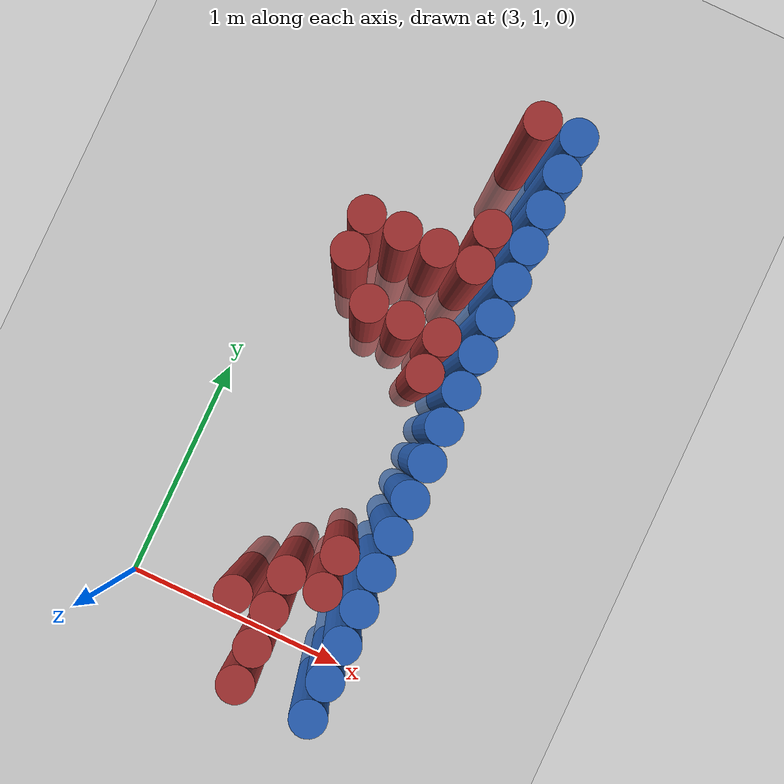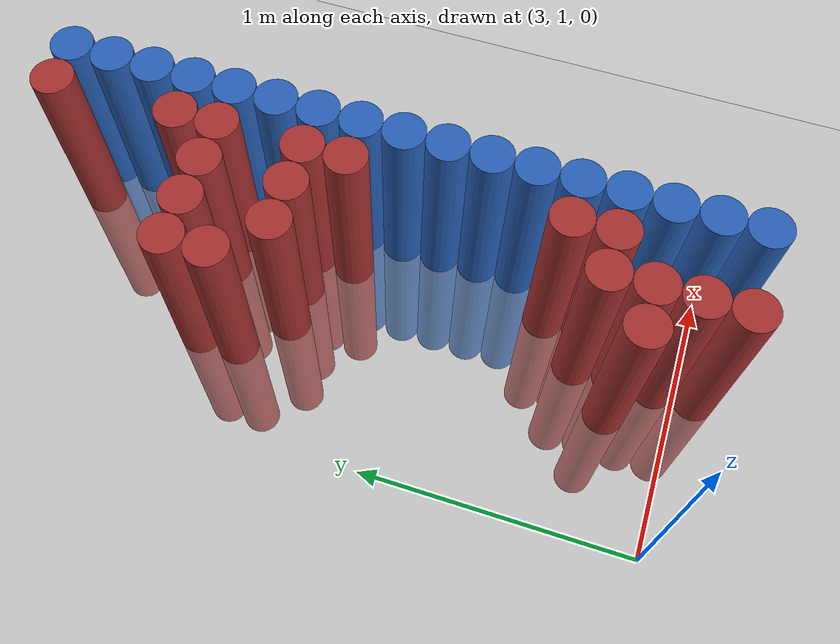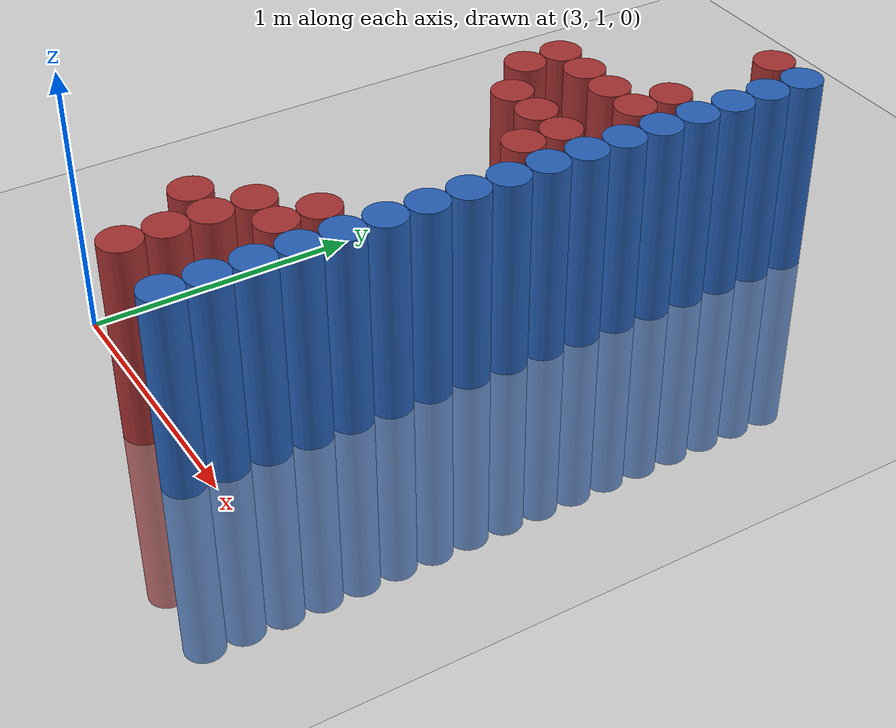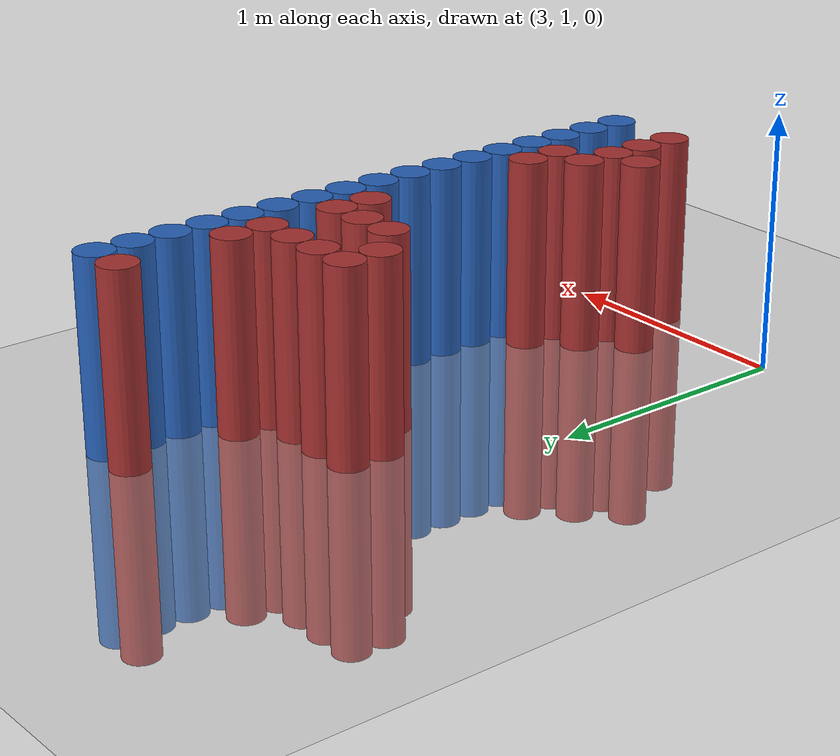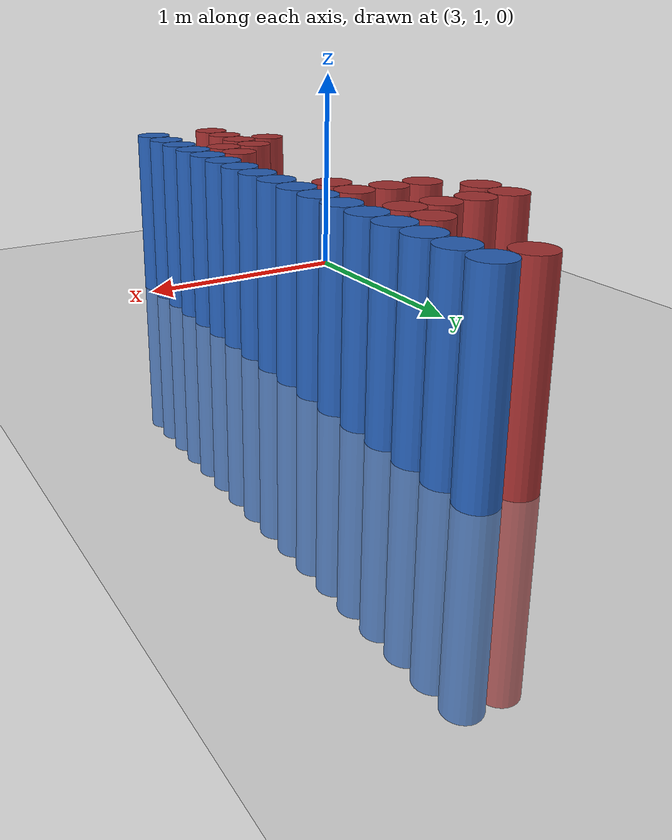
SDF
<sdf version="1.6">
 <world name="default">
  <model name="ground_plane">
   <static>1</static>
   <link name="link">
    <collision name="collision">
     <geometry><plane><normal>0 0 1</normal><size>100 100</size></plane></geometry>
     <surface><friction><ode><mu>100</mu><mu2>50</mu2></ode></friction></surface>
    </collision>
    <visual name="visual">
     <cast_shadows>0</cast_shadows>
     <geometry><plane><normal>0 0 1</normal><size>100 100</size></plane></geometry>
     <material>
      <script><uri>file://media/materials/scripts/gazebo.material</uri><name>Gazebo/Grey</name></script>
     </material>
    </visual>
   </link>
  </model>
  <model name="unit_cylinder_128">
   <static>1</static>
   <pose>3.925000 1.075000 0.000000 0.000000 0.000000 0.000000</pose>
   <link name="link">
    <inertial>
     <mass>1</mass>
     <inertia><ixx>0.145833</ixx><ixy>0</ixy><ixz>0</ixz><iyy>0.145833</iyy><iyz>0</iyz><izz>0.125</izz></inertia>
    </inertial>
    <collision name="collision">
     <geometry><cylinder><radius>0.075000</radius><length>1.5</length></cylinder></geometry>
    </collision>
    <visual name="visual">
     <geometry><cylinder><radius>0.075000</radius><length>1.5</length></cylinder></geometry>
     <material>
      <ambient>0.152000 0.379000 0.720000 1</ambient>
      <diffuse>0.152000 0.379000 0.720000 1</diffuse>
     </material>
     <material>
      <script><name>Gazebo/Grey</name><uri>file://media/materials/scripts/gazebo.material</uri></script>
     </material>
    </visual>
   </link>
  </model>
  <model name="unit_cylinder_130">
   <static>1</static>
   <pose>3.925000 1.225000 0.000000 0.000000 0.000000 0.000000</pose>
   <link name="link">
    <inertial>
     <mass>1</mass>
     <inertia><ixx>0.145833</ixx><ixy>0</ixy><ixz>0</ixz><iyy>0.145833</iyy><iyz>0</iyz><izz>0.125</izz></inertia>
    </inertial>
    <collision name="collision">
     <geometry><cylinder><radius>0.075000</radius><length>1.5</length></cylinder></geometry>
    </collision>
    <visual name="visual">
     <geometry><cylinder><radius>0.075000</radius><length>1.5</length></cylinder></geometry>
     <material>
      <ambient>0.152000 0.379000 0.720000 1</ambient>
      <diffuse>0.152000 0.379000 0.720000 1</diffuse>
     </material>
     <material>
      <script><name>Gazebo/Grey</name><uri>file://media/materials/scripts/gazebo.material</uri></script>
     </material>
    </visual>
   </link>
  </model>
  <model name="unit_cylinder_132">
   <static>1</static>
   <pose>3.925000 1.375000 0.000000 0.000000 0.000000 0.000000</pose>
   <link name="link">
    <inertial>
     <mass>1</mass>
     <inertia><ixx>0.145833</ixx><ixy>0</ixy><ixz>0</ixz><iyy>0.145833</iyy><iyz>0</iyz><izz>0.125</izz></inertia>
    </inertial>
    <collision name="collision">
     <geometry><cylinder><radius>0.075000</radius><length>1.5</length></cylinder></geometry>
    </collision>
    <visual name="visual">
     <geometry><cylinder><radius>0.075000</radius><length>1.5</length></cylinder></geometry>
     <material>
      <ambient>0.152000 0.379000 0.720000 1</ambient>
      <diffuse>0.152000 0.379000 0.720000 1</diffuse>
     </material>
     <material>
      <script><name>Gazebo/Grey</name><uri>file://media/materials/scripts/gazebo.material</uri></script>
     </material>
    </visual>
   </link>
  </model>
  <model name="unit_cylinder_134">
   <static>1</static>
   <pose>3.925000 1.525000 0.000000 0.000000 0.000000 0.000000</pose>
   <link name="link">
    <inertial>
     <mass>1</mass>
     <inertia><ixx>0.145833</ixx><ixy>0</ixy><ixz>0</ixz><iyy>0.145833</iyy><iyz>0</iyz><izz>0.125</izz></inertia>
    </inertial>
    <collision name="collision">
     <geometry><cylinder><radius>0.075000</radius><length>1.5</length></cylinder></geometry>
    </collision>
    <visual name="visual">
     <geometry><cylinder><radius>0.075000</radius><length>1.5</length></cylinder></geometry>
     <material>
      <ambient>0.152000 0.379000 0.720000 1</ambient>
      <diffuse>0.152000 0.379000 0.720000 1</diffuse>
     </material>
     <material>
      <script><name>Gazebo/Grey</name><uri>file://media/materials/scripts/gazebo.material</uri></script>
     </material>
    </visual>
   </link>
  </model>
  <model name="unit_cylinder_136">
   <static>1</static>
   <pose>3.925000 1.675000 0.000000 0.000000 0.000000 0.000000</pose>
   <link name="link">
    <inertial>
     <mass>1</mass>
     <inertia><ixx>0.145833</ixx><ixy>0</ixy><ixz>0</ixz><iyy>0.145833</iyy><iyz>0</iyz><izz>0.125</izz></inertia>
    </inertial>
    <collision name="collision">
     <geometry><cylinder><radius>0.075000</radius><length>1.5</length></cylinder></geometry>
    </collision>
    <visual name="visual">
     <geometry><cylinder><radius>0.075000</radius><length>1.5</length></cylinder></geometry>
     <material>
      <ambient>0.152000 0.379000 0.720000 1</ambient>
      <diffuse>0.152000 0.379000 0.720000 1</diffuse>
     </material>
     <material>
      <script><name>Gazebo/Grey</name><uri>file://media/materials/scripts/gazebo.material</uri></script>
     </material>
    </visual>
   </link>
  </model>
  <model name="unit_cylinder_138">
   <static>1</static>
   <pose>3.925000 1.825000 0.000000 0.000000 0.000000 0.000000</pose>
   <link name="link">
    <inertial>
     <mass>1</mass>
     <inertia><ixx>0.145833</ixx><ixy>0</ixy><ixz>0</ixz><iyy>0.145833</iyy><iyz>0</iyz><izz>0.125</izz></inertia>
    </inertial>
    <collision name="collision">
     <geometry><cylinder><radius>0.075000</radius><length>1.5</length></cylinder></geometry>
    </collision>
    <visual name="visual">
     <geometry><cylinder><radius>0.075000</radius><length>1.5</length></cylinder></geometry>
     <material>
      <ambient>0.152000 0.379000 0.720000 1</ambient>
      <diffuse>0.152000 0.379000 0.720000 1</diffuse>
     </material>
     <material>
      <script><name>Gazebo/Grey</name><uri>file://media/materials/scripts/gazebo.material</uri></script>
     </material>
    </visual>
   </link>
  </model>
  <model name="unit_cylinder_140">
   <static>1</static>
   <pose>3.925000 1.975000 0.000000 0.000000 0.000000 0.000000</pose>
   <link name="link">
    <inertial>
     <mass>1</mass>
     <inertia><ixx>0.145833</ixx><ixy>0</ixy><ixz>0</ixz><iyy>0.145833</iyy><iyz>0</iyz><izz>0.125</izz></inertia>
    </inertial>
    <collision name="collision">
     <geometry><cylinder><radius>0.075000</radius><length>1.5</length></cylinder></geometry>
    </collision>
    <visual name="visual">
     <geometry><cylinder><radius>0.075000</radius><length>1.5</length></cylinder></geometry>
     <material>
      <ambient>0.152000 0.379000 0.720000 1</ambient>
      <diffuse>0.152000 0.379000 0.720000 1</diffuse>
     </material>
     <material>
      <script><name>Gazebo/Grey</name><uri>file://media/materials/scripts/gazebo.material</uri></script>
     </material>
    </visual>
   </link>
  </model>
  <model name="unit_cylinder_142">
   <static>1</static>
   <pose>3.925000 2.125000 0.000000 0.000000 0.000000 0.000000</pose>
   <link name="link">
    <inertial>
     <mass>1</mass>
     <inertia><ixx>0.145833</ixx><ixy>0</ixy><ixz>0</ixz><iyy>0.145833</iyy><iyz>0</iyz><izz>0.125</izz></inertia>
    </inertial>
    <collision name="collision">
     <geometry><cylinder><radius>0.075000</radius><length>1.5</length></cylinder></geometry>
    </collision>
    <visual name="visual">
     <geometry><cylinder><radius>0.075000</radius><length>1.5</length></cylinder></geometry>
     <material>
      <ambient>0.152000 0.379000 0.720000 1</ambient>
      <diffuse>0.152000 0.379000 0.720000 1</diffuse>
     </material>
     <material>
      <script><name>Gazebo/Grey</name><uri>file://media/materials/scripts/gazebo.material</uri></script>
     </material>
    </visual>
   </link>
  </model>
  <model name="unit_cylinder_144">
   <static>1</static>
   <pose>3.925000 2.275000 0.000000 0.000000 0.000000 0.000000</pose>
   <link name="link">
    <inertial>
     <mass>1</mass>
     <inertia><ixx>0.145833</ixx><ixy>0</ixy><ixz>0</ixz><iyy>0.145833</iyy><iyz>0</iyz><izz>0.125</izz></inertia>
    </inertial>
    <collision name="collision">
     <geometry><cylinder><radius>0.075000</radius><length>1.5</length></cylinder></geometry>
    </collision>
    <visual name="visual">
     <geometry><cylinder><radius>0.075000</radius><length>1.5</length></cylinder></geometry>
     <material>
      <ambient>0.152000 0.379000 0.720000 1</ambient>
      <diffuse>0.152000 0.379000 0.720000 1</diffuse>
     </material>
     <material>
      <script><name>Gazebo/Grey</name><uri>file://media/materials/scripts/gazebo.material</uri></script>
     </material>
    </visual>
   </link>
  </model>
  <model name="unit_cylinder_146">
   <static>1</static>
   <pose>3.925000 2.425000 0.000000 0.000000 0.000000 0.000000</pose>
   <link name="link">
    <inertial>
     <mass>1</mass>
     <inertia><ixx>0.145833</ixx><ixy>0</ixy><ixz>0</ixz><iyy>0.145833</iyy><iyz>0</iyz><izz>0.125</izz></inertia>
    </inertial>
    <collision name="collision">
     <geometry><cylinder><radius>0.075000</radius><length>1.5</length></cylinder></geometry>
    </collision>
    <visual name="visual">
     <geometry><cylinder><radius>0.075000</radius><length>1.5</length></cylinder></geometry>
     <material>
      <ambient>0.152000 0.379000 0.720000 1</ambient>
      <diffuse>0.152000 0.379000 0.720000 1</diffuse>
     </material>
     <material>
      <script><name>Gazebo/Grey</name><uri>file://media/materials/scripts/gazebo.material</uri></script>
     </material>
    </visual>
   </link>
  </model>
  <model name="unit_cylinder_148">
   <static>1</static>
   <pose>3.925000 2.575000 0.000000 0.000000 0.000000 0.000000</pose>
   <link name="link">
    <inertial>
     <mass>1</mass>
     <inertia><ixx>0.145833</ixx><ixy>0</ixy><ixz>0</ixz><iyy>0.145833</iyy><iyz>0</iyz><izz>0.125</izz></inertia>
    </inertial>
    <collision name="collision">
     <geometry><cylinder><radius>0.075000</radius><length>1.5</length></cylinder></geometry>
    </collision>
    <visual name="visual">
     <geometry><cylinder><radius>0.075000</radius><length>1.5</length></cylinder></geometry>
     <material>
      <ambient>0.152000 0.379000 0.720000 1</ambient>
      <diffuse>0.152000 0.379000 0.720000 1</diffuse>
     </material>
     <material>
      <script><name>Gazebo/Grey</name><uri>file://media/materials/scripts/gazebo.material</uri></script>
     </material>
    </visual>
   </link>
  </model>
  <model name="unit_cylinder_150">
   <static>1</static>
   <pose>3.925000 2.725000 0.000000 0.000000 0.000000 0.000000</pose>
   <link name="link">
    <inertial>
     <mass>1</mass>
     <inertia><ixx>0.145833</ixx><ixy>0</ixy><ixz>0</ixz><iyy>0.145833</iyy><iyz>0</iyz><izz>0.125</izz></inertia>
    </inertial>
    <collision name="collision">
     <geometry><cylinder><radius>0.075000</radius><length>1.5</length></cylinder></geometry>
    </collision>
    <visual name="visual">
     <geometry><cylinder><radius>0.075000</radius><length>1.5</length></cylinder></geometry>
     <material>
      <ambient>0.152000 0.379000 0.720000 1</ambient>
      <diffuse>0.152000 0.379000 0.720000 1</diffuse>
     </material>
     <material>
      <script><name>Gazebo/Grey</name><uri>file://media/materials/scripts/gazebo.material</uri></script>
     </material>
    </visual>
   </link>
  </model>
  <model name="unit_cylinder_152">
   <static>1</static>
   <pose>3.925000 2.875000 0.000000 0.000000 0.000000 0.000000</pose>
   <link name="link">
    <inertial>
     <mass>1</mass>
     <inertia><ixx>0.145833</ixx><ixy>0</ixy><ixz>0</ixz><iyy>0.145833</iyy><iyz>0</iyz><izz>0.125</izz></inertia>
    </inertial>
    <collision name="collision">
     <geometry><cylinder><radius>0.075000</radius><length>1.5</length></cylinder></geometry>
    </collision>
    <visual name="visual">
     <geometry><cylinder><radius>0.075000</radius><length>1.5</length></cylinder></geometry>
     <material>
      <ambient>0.152000 0.379000 0.720000 1</ambient>
      <diffuse>0.152000 0.379000 0.720000 1</diffuse>
     </material>
     <material>
      <script><name>Gazebo/Grey</name><uri>file://media/materials/scripts/gazebo.material</uri></script>
     </material>
    </visual>
   </link>
  </model>
  <model name="unit_cylinder_154">
   <static>1</static>
   <pose>3.925000 3.025000 0.000000 0.000000 0.000000 0.000000</pose>
   <link name="link">
    <inertial>
     <mass>1</mass>
     <inertia><ixx>0.145833</ixx><ixy>0</ixy><ixz>0</ixz><iyy>0.145833</iyy><iyz>0</iyz><izz>0.125</izz></inertia>
    </inertial>
    <collision name="collision">
     <geometry><cylinder><radius>0.075000</radius><length>1.5</length></cylinder></geometry>
    </collision>
    <visual name="visual">
     <geometry><cylinder><radius>0.075000</radius><length>1.5</length></cylinder></geometry>
     <material>
      <ambient>0.152000 0.379000 0.720000 1</ambient>
      <diffuse>0.152000 0.379000 0.720000 1</diffuse>
     </material>
     <material>
      <script><name>Gazebo/Grey</name><uri>file://media/materials/scripts/gazebo.material</uri></script>
     </material>
    </visual>
   </link>
  </model>
  <model name="unit_cylinder_156">
   <static>1</static>
   <pose>3.925000 3.175000 0.000000 0.000000 0.000000 0.000000</pose>
   <link name="link">
    <inertial>
     <mass>1</mass>
     <inertia><ixx>0.145833</ixx><ixy>0</ixy><ixz>0</ixz><iyy>0.145833</iyy><iyz>0</iyz><izz>0.125</izz></inertia>
    </inertial>
    <collision name="collision">
     <geometry><cylinder><radius>0.075000</radius><length>1.5</length></cylinder></geometry>
    </collision>
    <visual name="visual">
     <geometry><cylinder><radius>0.075000</radius><length>1.5</length></cylinder></geometry>
     <material>
      <ambient>0.152000 0.379000 0.720000 1</ambient>
      <diffuse>0.152000 0.379000 0.720000 1</diffuse>
     </material>
     <material>
      <script><name>Gazebo/Grey</name><uri>file://media/materials/scripts/gazebo.material</uri></script>
     </material>
    </visual>
   </link>
  </model>
  <model name="unit_cylinder_158">
   <static>1</static>
   <pose>3.925000 3.325000 0.000000 0.000000 0.000000 0.000000</pose>
   <link name="link">
    <inertial>
     <mass>1</mass>
     <inertia><ixx>0.145833</ixx><ixy>0</ixy><ixz>0</ixz><iyy>0.145833</iyy><iyz>0</iyz><izz>0.125</izz></inertia>
    </inertial>
    <collision name="collision">
     <geometry><cylinder><radius>0.075000</radius><length>1.5</length></cylinder></geometry>
    </collision>
    <visual name="visual">
     <geometry><cylinder><radius>0.075000</radius><length>1.5</length></cylinder></geometry>
     <material>
      <ambient>0.152000 0.379000 0.720000 1</ambient>
      <diffuse>0.152000 0.379000 0.720000 1</diffuse>
     </material>
     <material>
      <script><name>Gazebo/Grey</name><uri>file://media/materials/scripts/gazebo.material</uri></script>
     </material>
    </visual>
   </link>
  </model>
  <model name="unit_cylinder_556">
   <static>1</static>
   <pose>3.325000 2.575000 0.000000 0.000000 0.000000 0.000000</pose>
   <link name="link">
    <inertial>
     <mass>1</mass>
     <inertia><ixx>0.145833</ixx><ixy>0</ixy><ixz>0</ixz><iyy>0.145833</iyy><iyz>0</iyz><izz>0.125</izz></inertia>
    </inertial>
    <collision name="collision">
     <geometry><cylinder><radius>0.075000</radius><length>1.5</length></cylinder></geometry>
    </collision>
    <visual name="visual">
     <geometry><cylinder><radius>0.075000</radius><length>1.5</length></cylinder></geometry>
     <material>
      <ambient>0.648000 0.192000 0.192000 1</ambient>
      <diffuse>0.648000 0.192000 0.192000 1</diffuse>
     </material>
     <material>
      <script><name>Gazebo/Grey</name><uri>file://media/materials/scripts/gazebo.material</uri></script>
     </material>
    </visual>
   </link>
  </model>
  <model name="unit_cylinder_557">
   <static>1</static>
   <pose>3.325000 2.725000 0.000000 0.000000 0.000000 0.000000</pose>
   <link name="link">
    <inertial>
     <mass>1</mass>
     <inertia><ixx>0.145833</ixx><ixy>0</ixy><ixz>0</ixz><iyy>0.145833</iyy><iyz>0</iyz><izz>0.125</izz></inertia>
    </inertial>
    <collision name="collision">
     <geometry><cylinder><radius>0.075000</radius><length>1.5</length></cylinder></geometry>
    </collision>
    <visual name="visual">
     <geometry><cylinder><radius>0.075000</radius><length>1.5</length></cylinder></geometry>
     <material>
      <ambient>0.648000 0.192000 0.192000 1</ambient>
      <diffuse>0.648000 0.192000 0.192000 1</diffuse>
     </material>
     <material>
      <script><name>Gazebo/Grey</name><uri>file://media/materials/scripts/gazebo.material</uri></script>
     </material>
    </visual>
   </link>
  </model>
  <model name="unit_cylinder_570">
   <static>1</static>
   <pose>3.475000 1.225000 0.000000 0.000000 0.000000 0.000000</pose>
   <link name="link">
    <inertial>
     <mass>1</mass>
     <inertia><ixx>0.145833</ixx><ixy>0</ixy><ixz>0</ixz><iyy>0.145833</iyy><iyz>0</iyz><izz>0.125</izz></inertia>
    </inertial>
    <collision name="collision">
     <geometry><cylinder><radius>0.075000</radius><length>1.5</length></cylinder></geometry>
    </collision>
    <visual name="visual">
     <geometry><cylinder><radius>0.075000</radius><length>1.5</length></cylinder></geometry>
     <material>
      <ambient>0.648000 0.192000 0.192000 1</ambient>
      <diffuse>0.648000 0.192000 0.192000 1</diffuse>
     </material>
     <material>
      <script><name>Gazebo/Grey</name><uri>file://media/materials/scripts/gazebo.material</uri></script>
     </material>
    </visual>
   </link>
  </model>
  <model name="unit_cylinder_571">
   <static>1</static>
   <pose>3.475000 2.425000 0.000000 0.000000 0.000000 0.000000</pose>
   <link name="link">
    <inertial>
     <mass>1</mass>
     <inertia><ixx>0.145833</ixx><ixy>0</ixy><ixz>0</ixz><iyy>0.145833</iyy><iyz>0</iyz><izz>0.125</izz></inertia>
    </inertial>
    <collision name="collision">
     <geometry><cylinder><radius>0.075000</radius><length>1.5</length></cylinder></geometry>
    </collision>
    <visual name="visual">
     <geometry><cylinder><radius>0.075000</radius><length>1.5</length></cylinder></geometry>
     <material>
      <ambient>0.648000 0.192000 0.192000 1</ambient>
      <diffuse>0.648000 0.192000 0.192000 1</diffuse>
     </material>
     <material>
      <script><name>Gazebo/Grey</name><uri>file://media/materials/scripts/gazebo.material</uri></script>
     </material>
    </visual>
   </link>
  </model>
  <model name="unit_cylinder_572">
   <static>1</static>
   <pose>3.475000 2.725000 0.000000 0.000000 0.000000 0.000000</pose>
   <link name="link">
    <inertial>
     <mass>1</mass>
     <inertia><ixx>0.145833</ixx><ixy>0</ixy><ixz>0</ixz><iyy>0.145833</iyy><iyz>0</iyz><izz>0.125</izz></inertia>
    </inertial>
    <collision name="collision">
     <geometry><cylinder><radius>0.075000</radius><length>1.5</length></cylinder></geometry>
    </collision>
    <visual name="visual">
     <geometry><cylinder><radius>0.075000</radius><length>1.5</length></cylinder></geometry>
     <material>
      <ambient>0.648000 0.192000 0.192000 1</ambient>
      <diffuse>0.648000 0.192000 0.192000 1</diffuse>
     </material>
     <material>
      <script><name>Gazebo/Grey</name><uri>file://media/materials/scripts/gazebo.material</uri></script>
     </material>
    </visual>
   </link>
  </model>
  <model name="unit_cylinder_585">
   <static>1</static>
   <pose>3.625000 0.925000 0.000000 0.000000 0.000000 0.000000</pose>
   <link name="link">
    <inertial>
     <mass>1</mass>
     <inertia><ixx>0.145833</ixx><ixy>0</ixy><ixz>0</ixz><iyy>0.145833</iyy><iyz>0</iyz><izz>0.125</izz></inertia>
    </inertial>
    <collision name="collision">
     <geometry><cylinder><radius>0.075000</radius><length>1.5</length></cylinder></geometry>
    </collision>
    <visual name="visual">
     <geometry><cylinder><radius>0.075000</radius><length>1.5</length></cylinder></geometry>
     <material>
      <ambient>0.648000 0.192000 0.192000 1</ambient>
      <diffuse>0.648000 0.192000 0.192000 1</diffuse>
     </material>
     <material>
      <script><name>Gazebo/Grey</name><uri>file://media/materials/scripts/gazebo.material</uri></script>
     </material>
    </visual>
   </link>
  </model>
  <model name="unit_cylinder_586">
   <static>1</static>
   <pose>3.625000 1.075000 0.000000 0.000000 0.000000 0.000000</pose>
   <link name="link">
    <inertial>
     <mass>1</mass>
     <inertia><ixx>0.145833</ixx><ixy>0</ixy><ixz>0</ixz><iyy>0.145833</iyy><iyz>0</iyz><izz>0.125</izz></inertia>
    </inertial>
    <collision name="collision">
     <geometry><cylinder><radius>0.075000</radius><length>1.5</length></cylinder></geometry>
    </collision>
    <visual name="visual">
     <geometry><cylinder><radius>0.075000</radius><length>1.5</length></cylinder></geometry>
     <material>
      <ambient>0.648000 0.192000 0.192000 1</ambient>
      <diffuse>0.648000 0.192000 0.192000 1</diffuse>
     </material>
     <material>
      <script><name>Gazebo/Grey</name><uri>file://media/materials/scripts/gazebo.material</uri></script>
     </material>
    </visual>
   </link>
  </model>
  <model name="unit_cylinder_587">
   <static>1</static>
   <pose>3.625000 1.225000 0.000000 0.000000 0.000000 0.000000</pose>
   <link name="link">
    <inertial>
     <mass>1</mass>
     <inertia><ixx>0.145833</ixx><ixy>0</ixy><ixz>0</ixz><iyy>0.145833</iyy><iyz>0</iyz><izz>0.125</izz></inertia>
    </inertial>
    <collision name="collision">
     <geometry><cylinder><radius>0.075000</radius><length>1.5</length></cylinder></geometry>
    </collision>
    <visual name="visual">
     <geometry><cylinder><radius>0.075000</radius><length>1.5</length></cylinder></geometry>
     <material>
      <ambient>0.648000 0.192000 0.192000 1</ambient>
      <diffuse>0.648000 0.192000 0.192000 1</diffuse>
     </material>
     <material>
      <script><name>Gazebo/Grey</name><uri>file://media/materials/scripts/gazebo.material</uri></script>
     </material>
    </visual>
   </link>
  </model>
  <model name="unit_cylinder_588">
   <static>1</static>
   <pose>3.625000 1.375000 0.000000 0.000000 0.000000 0.000000</pose>
   <link name="link">
    <inertial>
     <mass>1</mass>
     <inertia><ixx>0.145833</ixx><ixy>0</ixy><ixz>0</ixz><iyy>0.145833</iyy><iyz>0</iyz><izz>0.125</izz></inertia>
    </inertial>
    <collision name="collision">
     <geometry><cylinder><radius>0.075000</radius><length>1.5</length></cylinder></geometry>
    </collision>
    <visual name="visual">
     <geometry><cylinder><radius>0.075000</radius><length>1.5</length></cylinder></geometry>
     <material>
      <ambient>0.648000 0.192000 0.192000 1</ambient>
      <diffuse>0.648000 0.192000 0.192000 1</diffuse>
     </material>
     <material>
      <script><name>Gazebo/Grey</name><uri>file://media/materials/scripts/gazebo.material</uri></script>
     </material>
    </visual>
   </link>
  </model>
  <model name="unit_cylinder_589">
   <static>1</static>
   <pose>3.625000 2.425000 0.000000 0.000000 0.000000 0.000000</pose>
   <link name="link">
    <inertial>
     <mass>1</mass>
     <inertia><ixx>0.145833</ixx><ixy>0</ixy><ixz>0</ixz><iyy>0.145833</iyy><iyz>0</iyz><izz>0.125</izz></inertia>
    </inertial>
    <collision name="collision">
     <geometry><cylinder><radius>0.075000</radius><length>1.5</length></cylinder></geometry>
    </collision>
    <visual name="visual">
     <geometry><cylinder><radius>0.075000</radius><length>1.5</length></cylinder></geometry>
     <material>
      <ambient>0.648000 0.192000 0.192000 1</ambient>
      <diffuse>0.648000 0.192000 0.192000 1</diffuse>
     </material>
     <material>
      <script><name>Gazebo/Grey</name><uri>file://media/materials/scripts/gazebo.material</uri></script>
     </material>
    </visual>
   </link>
  </model>
  <model name="unit_cylinder_590">
   <static>1</static>
   <pose>3.625000 2.725000 0.000000 0.000000 0.000000 0.000000</pose>
   <link name="link">
    <inertial>
     <mass>1</mass>
     <inertia><ixx>0.145833</ixx><ixy>0</ixy><ixz>0</ixz><iyy>0.145833</iyy><iyz>0</iyz><izz>0.125</izz></inertia>
    </inertial>
    <collision name="collision">
     <geometry><cylinder><radius>0.075000</radius><length>1.5</length></cylinder></geometry>
    </collision>
    <visual name="visual">
     <geometry><cylinder><radius>0.075000</radius><length>1.5</length></cylinder></geometry>
     <material>
      <ambient>0.648000 0.192000 0.192000 1</ambient>
      <diffuse>0.648000 0.192000 0.192000 1</diffuse>
     </material>
     <material>
      <script><name>Gazebo/Grey</name><uri>file://media/materials/scripts/gazebo.material</uri></script>
     </material>
    </visual>
   </link>
  </model>
  <model name="unit_cylinder_601">
   <static>1</static>
   <pose>3.775000 1.375000 0.000000 0.000000 0.000000 0.000000</pose>
   <link name="link">
    <inertial>
     <mass>1</mass>
     <inertia><ixx>0.145833</ixx><ixy>0</ixy><ixz>0</ixz><iyy>0.145833</iyy><iyz>0</iyz><izz>0.125</izz></inertia>
    </inertial>
    <collision name="collision">
     <geometry><cylinder><radius>0.075000</radius><length>1.5</length></cylinder></geometry>
    </collision>
    <visual name="visual">
     <geometry><cylinder><radius>0.075000</radius><length>1.5</length></cylinder></geometry>
     <material>
      <ambient>0.648000 0.192000 0.192000 1</ambient>
      <diffuse>0.648000 0.192000 0.192000 1</diffuse>
     </material>
     <material>
      <script><name>Gazebo/Grey</name><uri>file://media/materials/scripts/gazebo.material</uri></script>
     </material>
    </visual>
   </link>
  </model>
  <model name="unit_cylinder_602">
   <static>1</static>
   <pose>3.775000 1.525000 0.000000 0.000000 0.000000 0.000000</pose>
   <link name="link">
    <inertial>
     <mass>1</mass>
     <inertia><ixx>0.145833</ixx><ixy>0</ixy><ixz>0</ixz><iyy>0.145833</iyy><iyz>0</iyz><izz>0.125</izz></inertia>
    </inertial>
    <collision name="collision">
     <geometry><cylinder><radius>0.075000</radius><length>1.5</length></cylinder></geometry>
    </collision>
    <visual name="visual">
     <geometry><cylinder><radius>0.075000</radius><length>1.5</length></cylinder></geometry>
     <material>
      <ambient>0.648000 0.192000 0.192000 1</ambient>
      <diffuse>0.648000 0.192000 0.192000 1</diffuse>
     </material>
     <material>
      <script><name>Gazebo/Grey</name><uri>file://media/materials/scripts/gazebo.material</uri></script>
     </material>
    </visual>
   </link>
  </model>
  <model name="unit_cylinder_603">
   <static>1</static>
   <pose>3.775000 2.275000 0.000000 0.000000 0.000000 0.000000</pose>
   <link name="link">
    <inertial>
     <mass>1</mass>
     <inertia><ixx>0.145833</ixx><ixy>0</ixy><ixz>0</ixz><iyy>0.145833</iyy><iyz>0</iyz><izz>0.125</izz></inertia>
    </inertial>
    <collision name="collision">
     <geometry><cylinder><radius>0.075000</radius><length>1.5</length></cylinder></geometry>
    </collision>
    <visual name="visual">
     <geometry><cylinder><radius>0.075000</radius><length>1.5</length></cylinder></geometry>
     <material>
      <ambient>0.648000 0.192000 0.192000 1</ambient>
      <diffuse>0.648000 0.192000 0.192000 1</diffuse>
     </material>
     <material>
      <script><name>Gazebo/Grey</name><uri>file://media/materials/scripts/gazebo.material</uri></script>
     </material>
    </visual>
   </link>
  </model>
  <model name="unit_cylinder_604">
   <static>1</static>
   <pose>3.775000 2.425000 0.000000 0.000000 0.000000 0.000000</pose>
   <link name="link">
    <inertial>
     <mass>1</mass>
     <inertia><ixx>0.145833</ixx><ixy>0</ixy><ixz>0</ixz><iyy>0.145833</iyy><iyz>0</iyz><izz>0.125</izz></inertia>
    </inertial>
    <collision name="collision">
     <geometry><cylinder><radius>0.075000</radius><length>1.5</length></cylinder></geometry>
    </collision>
    <visual name="visual">
     <geometry><cylinder><radius>0.075000</radius><length>1.5</length></cylinder></geometry>
     <material>
      <ambient>0.648000 0.192000 0.192000 1</ambient>
      <diffuse>0.648000 0.192000 0.192000 1</diffuse>
     </material>
     <material>
      <script><name>Gazebo/Grey</name><uri>file://media/materials/scripts/gazebo.material</uri></script>
     </material>
    </visual>
   </link>
  </model>
  <model name="unit_cylinder_605">
   <static>1</static>
   <pose>3.775000 2.725000 0.000000 0.000000 0.000000 0.000000</pose>
   <link name="link">
    <inertial>
     <mass>1</mass>
     <inertia><ixx>0.145833</ixx><ixy>0</ixy><ixz>0</ixz><iyy>0.145833</iyy><iyz>0</iyz><izz>0.125</izz></inertia>
    </inertial>
    <collision name="collision">
     <geometry><cylinder><radius>0.075000</radius><length>1.5</length></cylinder></geometry>
    </collision>
    <visual name="visual">
     <geometry><cylinder><radius>0.075000</radius><length>1.5</length></cylinder></geometry>
     <material>
      <ambient>0.648000 0.192000 0.192000 1</ambient>
      <diffuse>0.648000 0.192000 0.192000 1</diffuse>
     </material>
     <material>
      <script><name>Gazebo/Grey</name><uri>file://media/materials/scripts/gazebo.material</uri></script>
     </material>
    </visual>
   </link>
  </model>
  <model name="unit_cylinder_606">
   <static>1</static>
   <pose>3.775000 2.875000 0.000000 0.000000 0.000000 0.000000</pose>
   <link name="link">
    <inertial>
     <mass>1</mass>
     <inertia><ixx>0.145833</ixx><ixy>0</ixy><ixz>0</ixz><iyy>0.145833</iyy><iyz>0</iyz><izz>0.125</izz></inertia>
    </inertial>
    <collision name="collision">
     <geometry><cylinder><radius>0.075000</radius><length>1.5</length></cylinder></geometry>
    </collision>
    <visual name="visual">
     <geometry><cylinder><radius>0.075000</radius><length>1.5</length></cylinder></geometry>
     <material>
      <ambient>0.648000 0.192000 0.192000 1</ambient>
      <diffuse>0.648000 0.192000 0.192000 1</diffuse>
     </material>
     <material>
      <script><name>Gazebo/Grey</name><uri>file://media/materials/scripts/gazebo.material</uri></script>
     </material>
    </visual>
   </link>
  </model>
  <model name="unit_cylinder_607">
   <static>1</static>
   <pose>3.775000 3.325000 0.000000 0.000000 0.000000 0.000000</pose>
   <link name="link">
    <inertial>
     <mass>1</mass>
     <inertia><ixx>0.145833</ixx><ixy>0</ixy><ixz>0</ixz><iyy>0.145833</iyy><iyz>0</iyz><izz>0.125</izz></inertia>
    </inertial>
    <collision name="collision">
     <geometry><cylinder><radius>0.075000</radius><length>1.5</length></cylinder></geometry>
    </collision>
    <visual name="visual">
     <geometry><cylinder><radius>0.075000</radius><length>1.5</length></cylinder></geometry>
     <material>
      <ambient>0.648000 0.192000 0.192000 1</ambient>
      <diffuse>0.648000 0.192000 0.192000 1</diffuse>
     </material>
     <material>
      <script><name>Gazebo/Grey</name><uri>file://media/materials/scripts/gazebo.material</uri></script>
     </material>
    </visual>
   </link>
  </model>
  <model name="unit_cylinder_633">
   <static>1</static>
   <pose>3.925000 0.925000 0.000000 0.000000 0.000000 0.000000</pose>
   <link name="link">
    <inertial>
     <mass>1</mass>
     <inertia><ixx>0.145833</ixx><ixy>0</ixy><ixz>0</ixz><iyy>0.145833</iyy><iyz>0</iyz><izz>0.125</izz></inertia>
    </inertial>
    <collision name="collision">
     <geometry><cylinder><radius>0.075000</radius><length>1.5</length></cylinder></geometry>
    </collision>
    <visual name="visual">
     <geometry><cylinder><radius>0.075000</radius><length>1.5</length></cylinder></geometry>
     <material>
      <ambient>0.152000 0.379000 0.720000 1</ambient>
      <diffuse>0.152000 0.379000 0.720000 1</diffuse>
     </material>
     <material>
      <script><name>Gazebo/Grey</name><uri>file://media/materials/scripts/gazebo.material</uri></script>
     </material>
    </visual>
   </link>
  </model>
  <model name="unit_cylinder_634">
   <static>1</static>
   <pose>3.925000 1.075000 0.000000 0.000000 0.000000 0.000000</pose>
   <link name="link">
    <inertial>
     <mass>1</mass>
     <inertia><ixx>0.145833</ixx><ixy>0</ixy><ixz>0</ixz><iyy>0.145833</iyy><iyz>0</iyz><izz>0.125</izz></inertia>
    </inertial>
    <collision name="collision">
     <geometry><cylinder><radius>0.075000</radius><length>1.5</length></cylinder></geometry>
    </collision>
    <visual name="visual">
     <geometry><cylinder><radius>0.075000</radius><length>1.5</length></cylinder></geometry>
     <material>
      <ambient>0.152000 0.379000 0.720000 1</ambient>
      <diffuse>0.152000 0.379000 0.720000 1</diffuse>
     </material>
     <material>
      <script><name>Gazebo/Grey</name><uri>file://media/materials/scripts/gazebo.material</uri></script>
     </material>
    </visual>
   </link>
  </model>
  <model name="unit_cylinder_635">
   <static>1</static>
   <pose>3.925000 1.225000 0.000000 0.000000 0.000000 0.000000</pose>
   <link name="link">
    <inertial>
     <mass>1</mass>
     <inertia><ixx>0.145833</ixx><ixy>0</ixy><ixz>0</ixz><iyy>0.145833</iyy><iyz>0</iyz><izz>0.125</izz></inertia>
    </inertial>
    <collision name="collision">
     <geometry><cylinder><radius>0.075000</radius><length>1.5</length></cylinder></geometry>
    </collision>
    <visual name="visual">
     <geometry><cylinder><radius>0.075000</radius><length>1.5</length></cylinder></geometry>
     <material>
      <ambient>0.152000 0.379000 0.720000 1</ambient>
      <diffuse>0.152000 0.379000 0.720000 1</diffuse>
     </material>
     <material>
      <script><name>Gazebo/Grey</name><uri>file://media/materials/scripts/gazebo.material</uri></script>
     </material>
    </visual>
   </link>
  </model>
  <model name="unit_cylinder_636">
   <static>1</static>
   <pose>3.925000 1.375000 0.000000 0.000000 0.000000 0.000000</pose>
   <link name="link">
    <inertial>
     <mass>1</mass>
     <inertia><ixx>0.145833</ixx><ixy>0</ixy><ixz>0</ixz><iyy>0.145833</iyy><iyz>0</iyz><izz>0.125</izz></inertia>
    </inertial>
    <collision name="collision">
     <geometry><cylinder><radius>0.075000</radius><length>1.5</length></cylinder></geometry>
    </collision>
    <visual name="visual">
     <geometry><cylinder><radius>0.075000</radius><length>1.5</length></cylinder></geometry>
     <material>
      <ambient>0.152000 0.379000 0.720000 1</ambient>
      <diffuse>0.152000 0.379000 0.720000 1</diffuse>
     </material>
     <material>
      <script><name>Gazebo/Grey</name><uri>file://media/materials/scripts/gazebo.material</uri></script>
     </material>
    </visual>
   </link>
  </model>
  <model name="unit_cylinder_637">
   <static>1</static>
   <pose>3.925000 1.525000 0.000000 0.000000 0.000000 0.000000</pose>
   <link name="link">
    <inertial>
     <mass>1</mass>
     <inertia><ixx>0.145833</ixx><ixy>0</ixy><ixz>0</ixz><iyy>0.145833</iyy><iyz>0</iyz><izz>0.125</izz></inertia>
    </inertial>
    <collision name="collision">
     <geometry><cylinder><radius>0.075000</radius><length>1.5</length></cylinder></geometry>
    </collision>
    <visual name="visual">
     <geometry><cylinder><radius>0.075000</radius><length>1.5</length></cylinder></geometry>
     <material>
      <ambient>0.152000 0.379000 0.720000 1</ambient>
      <diffuse>0.152000 0.379000 0.720000 1</diffuse>
     </material>
     <material>
      <script><name>Gazebo/Grey</name><uri>file://media/materials/scripts/gazebo.material</uri></script>
     </material>
    </visual>
   </link>
  </model>
  <model name="unit_cylinder_638">
   <static>1</static>
   <pose>3.925000 1.675000 0.000000 0.000000 0.000000 0.000000</pose>
   <link name="link">
    <inertial>
     <mass>1</mass>
     <inertia><ixx>0.145833</ixx><ixy>0</ixy><ixz>0</ixz><iyy>0.145833</iyy><iyz>0</iyz><izz>0.125</izz></inertia>
    </inertial>
    <collision name="collision">
     <geometry><cylinder><radius>0.075000</radius><length>1.5</length></cylinder></geometry>
    </collision>
    <visual name="visual">
     <geometry><cylinder><radius>0.075000</radius><length>1.5</length></cylinder></geometry>
     <material>
      <ambient>0.152000 0.379000 0.720000 1</ambient>
      <diffuse>0.152000 0.379000 0.720000 1</diffuse>
     </material>
     <material>
      <script><name>Gazebo/Grey</name><uri>file://media/materials/scripts/gazebo.material</uri></script>
     </material>
    </visual>
   </link>
  </model>
  <model name="unit_cylinder_639">
   <static>1</static>
   <pose>3.925000 1.825000 0.000000 0.000000 0.000000 0.000000</pose>
   <link name="link">
    <inertial>
     <mass>1</mass>
     <inertia><ixx>0.145833</ixx><ixy>0</ixy><ixz>0</ixz><iyy>0.145833</iyy><iyz>0</iyz><izz>0.125</izz></inertia>
    </inertial>
    <collision name="collision">
     <geometry><cylinder><radius>0.075000</radius><length>1.5</length></cylinder></geometry>
    </collision>
    <visual name="visual">
     <geometry><cylinder><radius>0.075000</radius><length>1.5</length></cylinder></geometry>
     <material>
      <ambient>0.152000 0.379000 0.720000 1</ambient>
      <diffuse>0.152000 0.379000 0.720000 1</diffuse>
     </material>
     <material>
      <script><name>Gazebo/Grey</name><uri>file://media/materials/scripts/gazebo.material</uri></script>
     </material>
    </visual>
   </link>
  </model>
  <model name="unit_cylinder_640">
   <static>1</static>
   <pose>3.925000 1.975000 0.000000 0.000000 0.000000 0.000000</pose>
   <link name="link">
    <inertial>
     <mass>1</mass>
     <inertia><ixx>0.145833</ixx><ixy>0</ixy><ixz>0</ixz><iyy>0.145833</iyy><iyz>0</iyz><izz>0.125</izz></inertia>
    </inertial>
    <collision name="collision">
     <geometry><cylinder><radius>0.075000</radius><length>1.5</length></cylinder></geometry>
    </collision>
    <visual name="visual">
     <geometry><cylinder><radius>0.075000</radius><length>1.5</length></cylinder></geometry>
     <material>
      <ambient>0.152000 0.379000 0.720000 1</ambient>
      <diffuse>0.152000 0.379000 0.720000 1</diffuse>
     </material>
     <material>
      <script><name>Gazebo/Grey</name><uri>file://media/materials/scripts/gazebo.material</uri></script>
     </material>
    </visual>
   </link>
  </model>
  <model name="unit_cylinder_641">
   <static>1</static>
   <pose>3.925000 2.125000 0.000000 0.000000 0.000000 0.000000</pose>
   <link name="link">
    <inertial>
     <mass>1</mass>
     <inertia><ixx>0.145833</ixx><ixy>0</ixy><ixz>0</ixz><iyy>0.145833</iyy><iyz>0</iyz><izz>0.125</izz></inertia>
    </inertial>
    <collision name="collision">
     <geometry><cylinder><radius>0.075000</radius><length>1.5</length></cylinder></geometry>
    </collision>
    <visual name="visual">
     <geometry><cylinder><radius>0.075000</radius><length>1.5</length></cylinder></geometry>
     <material>
      <ambient>0.152000 0.379000 0.720000 1</ambient>
      <diffuse>0.152000 0.379000 0.720000 1</diffuse>
     </material>
     <material>
      <script><name>Gazebo/Grey</name><uri>file://media/materials/scripts/gazebo.material</uri></script>
     </material>
    </visual>
   </link>
  </model>
  <model name="unit_cylinder_642">
   <static>1</static>
   <pose>3.925000 2.275000 0.000000 0.000000 0.000000 0.000000</pose>
   <link name="link">
    <inertial>
     <mass>1</mass>
     <inertia><ixx>0.145833</ixx><ixy>0</ixy><ixz>0</ixz><iyy>0.145833</iyy><iyz>0</iyz><izz>0.125</izz></inertia>
    </inertial>
    <collision name="collision">
     <geometry><cylinder><radius>0.075000</radius><length>1.5</length></cylinder></geometry>
    </collision>
    <visual name="visual">
     <geometry><cylinder><radius>0.075000</radius><length>1.5</length></cylinder></geometry>
     <material>
      <ambient>0.152000 0.379000 0.720000 1</ambient>
      <diffuse>0.152000 0.379000 0.720000 1</diffuse>
     </material>
     <material>
      <script><name>Gazebo/Grey</name><uri>file://media/materials/scripts/gazebo.material</uri></script>
     </material>
    </visual>
   </link>
  </model>
  <model name="unit_cylinder_643">
   <static>1</static>
   <pose>3.925000 2.425000 0.000000 0.000000 0.000000 0.000000</pose>
   <link name="link">
    <inertial>
     <mass>1</mass>
     <inertia><ixx>0.145833</ixx><ixy>0</ixy><ixz>0</ixz><iyy>0.145833</iyy><iyz>0</iyz><izz>0.125</izz></inertia>
    </inertial>
    <collision name="collision">
     <geometry><cylinder><radius>0.075000</radius><length>1.5</length></cylinder></geometry>
    </collision>
    <visual name="visual">
     <geometry><cylinder><radius>0.075000</radius><length>1.5</length></cylinder></geometry>
     <material>
      <ambient>0.152000 0.379000 0.720000 1</ambient>
      <diffuse>0.152000 0.379000 0.720000 1</diffuse>
     </material>
     <material>
      <script><name>Gazebo/Grey</name><uri>file://media/materials/scripts/gazebo.material</uri></script>
     </material>
    </visual>
   </link>
  </model>
  <model name="unit_cylinder_644">
   <static>1</static>
   <pose>3.925000 2.575000 0.000000 0.000000 0.000000 0.000000</pose>
   <link name="link">
    <inertial>
     <mass>1</mass>
     <inertia><ixx>0.145833</ixx><ixy>0</ixy><ixz>0</ixz><iyy>0.145833</iyy><iyz>0</iyz><izz>0.125</izz></inertia>
    </inertial>
    <collision name="collision">
     <geometry><cylinder><radius>0.075000</radius><length>1.5</length></cylinder></geometry>
    </collision>
    <visual name="visual">
     <geometry><cylinder><radius>0.075000</radius><length>1.5</length></cylinder></geometry>
     <material>
      <ambient>0.152000 0.379000 0.720000 1</ambient>
      <diffuse>0.152000 0.379000 0.720000 1</diffuse>
     </material>
     <material>
      <script><name>Gazebo/Grey</name><uri>file://media/materials/scripts/gazebo.material</uri></script>
     </material>
    </visual>
   </link>
  </model>
  <model name="unit_cylinder_645">
   <static>1</static>
   <pose>3.925000 2.725000 0.000000 0.000000 0.000000 0.000000</pose>
   <link name="link">
    <inertial>
     <mass>1</mass>
     <inertia><ixx>0.145833</ixx><ixy>0</ixy><ixz>0</ixz><iyy>0.145833</iyy><iyz>0</iyz><izz>0.125</izz></inertia>
    </inertial>
    <collision name="collision">
     <geometry><cylinder><radius>0.075000</radius><length>1.5</length></cylinder></geometry>
    </collision>
    <visual name="visual">
     <geometry><cylinder><radius>0.075000</radius><length>1.5</length></cylinder></geometry>
     <material>
      <ambient>0.152000 0.379000 0.720000 1</ambient>
      <diffuse>0.152000 0.379000 0.720000 1</diffuse>
     </material>
     <material>
      <script><name>Gazebo/Grey</name><uri>file://media/materials/scripts/gazebo.material</uri></script>
     </material>
    </visual>
   </link>
  </model>
  <model name="unit_cylinder_646">
   <static>1</static>
   <pose>3.925000 2.875000 0.000000 0.000000 0.000000 0.000000</pose>
   <link name="link">
    <inertial>
     <mass>1</mass>
     <inertia><ixx>0.145833</ixx><ixy>0</ixy><ixz>0</ixz><iyy>0.145833</iyy><iyz>0</iyz><izz>0.125</izz></inertia>
    </inertial>
    <collision name="collision">
     <geometry><cylinder><radius>0.075000</radius><length>1.5</length></cylinder></geometry>
    </collision>
    <visual name="visual">
     <geometry><cylinder><radius>0.075000</radius><length>1.5</length></cylinder></geometry>
     <material>
      <ambient>0.152000 0.379000 0.720000 1</ambient>
      <diffuse>0.152000 0.379000 0.720000 1</diffuse>
     </material>
     <material>
      <script><name>Gazebo/Grey</name><uri>file://media/materials/scripts/gazebo.material</uri></script>
     </material>
    </visual>
   </link>
  </model>
  <model name="unit_cylinder_647">
   <static>1</static>
   <pose>3.925000 3.025000 0.000000 0.000000 0.000000 0.000000</pose>
   <link name="link">
    <inertial>
     <mass>1</mass>
     <inertia><ixx>0.145833</ixx><ixy>0</ixy><ixz>0</ixz><iyy>0.145833</iyy><iyz>0</iyz><izz>0.125</izz></inertia>
    </inertial>
    <collision name="collision">
     <geometry><cylinder><radius>0.075000</radius><length>1.5</length></cylinder></geometry>
    </collision>
    <visual name="visual">
     <geometry><cylinder><radius>0.075000</radius><length>1.5</length></cylinder></geometry>
     <material>
      <ambient>0.152000 0.379000 0.720000 1</ambient>
      <diffuse>0.152000 0.379000 0.720000 1</diffuse>
     </material>
     <material>
      <script><name>Gazebo/Grey</name><uri>file://media/materials/scripts/gazebo.material</uri></script>
     </material>
    </visual>
   </link>
  </model>
  <model name="unit_cylinder_648">
   <static>1</static>
   <pose>3.925000 3.175000 0.000000 0.000000 0.000000 0.000000</pose>
   <link name="link">
    <inertial>
     <mass>1</mass>
     <inertia><ixx>0.145833</ixx><ixy>0</ixy><ixz>0</ixz><iyy>0.145833</iyy><iyz>0</iyz><izz>0.125</izz></inertia>
    </inertial>
    <collision name="collision">
     <geometry><cylinder><radius>0.075000</radius><length>1.5</length></cylinder></geometry>
    </collision>
    <visual name="visual">
     <geometry><cylinder><radius>0.075000</radius><length>1.5</length></cylinder></geometry>
     <material>
      <ambient>0.152000 0.379000 0.720000 1</ambient>
      <diffuse>0.152000 0.379000 0.720000 1</diffuse>
     </material>
     <material>
      <script><name>Gazebo/Grey</name><uri>file://media/materials/scripts/gazebo.material</uri></script>
     </material>
    </visual>
   </link>
  </model>
  <model name="unit_cylinder_649">
   <static>1</static>
   <pose>3.925000 3.325000 0.000000 0.000000 0.000000 0.000000</pose>
   <link name="link">
    <inertial>
     <mass>1</mass>
     <inertia><ixx>0.145833</ixx><ixy>0</ixy><ixz>0</ixz><iyy>0.145833</iyy><iyz>0</iyz><izz>0.125</izz></inertia>
    </inertial>
    <collision name="collision">
     <geometry><cylinder><radius>0.075000</radius><length>1.5</length></cylinder></geometry>
    </collision>
    <visual name="visual">
     <geometry><cylinder><radius>0.075000</radius><length>1.5</length></cylinder></geometry>
     <material>
      <ambient>0.152000 0.379000 0.720000 1</ambient>
      <diffuse>0.152000 0.379000 0.720000 1</diffuse>
     </material>
     <material>
      <script><name>Gazebo/Grey</name><uri>file://media/materials/scripts/gazebo.material</uri></script>
     </material>
    </visual>
   </link>
  </model>
 </world>
</sdf>
